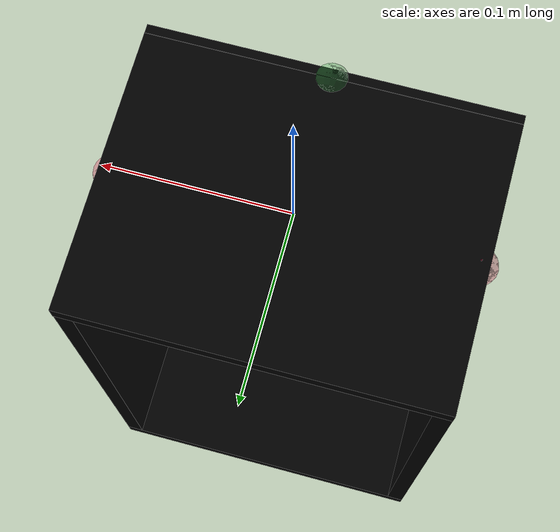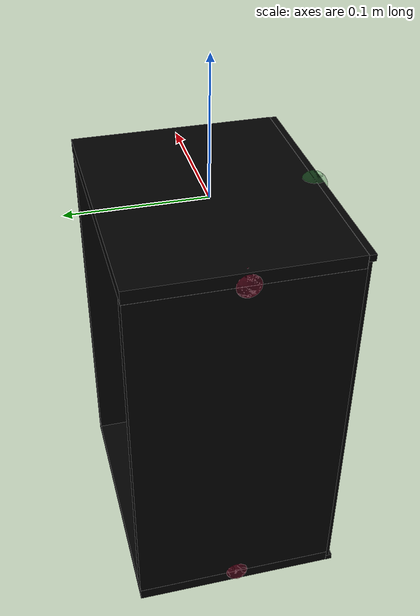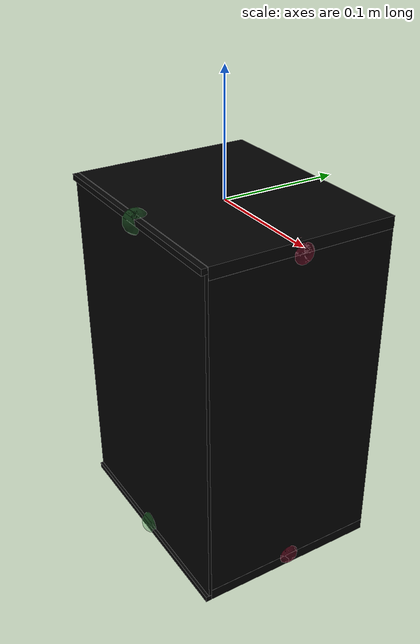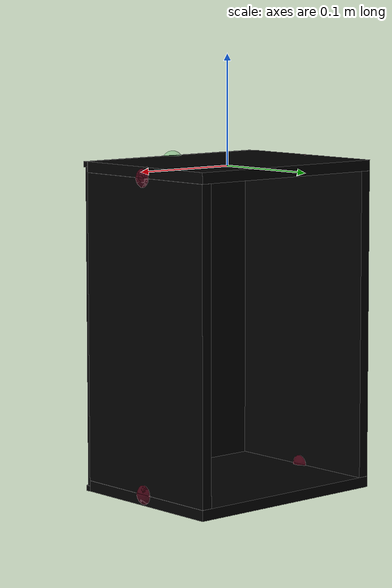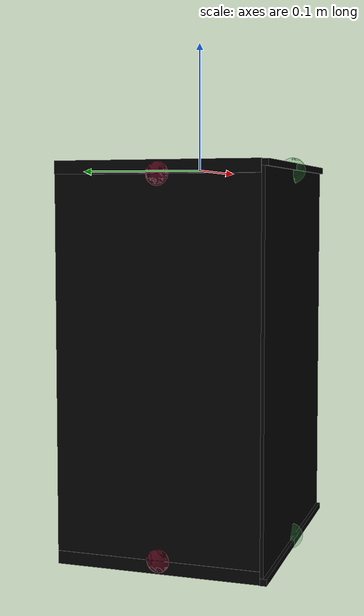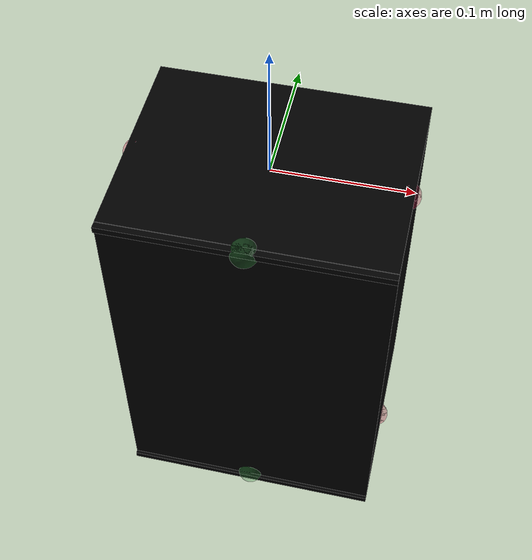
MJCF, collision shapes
<mujoco model="cabinet_akurum_0019">
    <custom>
        <numeric data="0.004059 0.31079 0.004853 -0.001617 -0.0 -3e-06 -0.999999" name="0_part0_initpos"/>
        <numeric data="0.02032 -0.15402 0.001323 0.510748 -0.510748 -0.489016 0.489016" name="4_part4_initpos"/>
        <numeric data="-0.31779 0.083549 0.00497 0.707106 -0.000865 -0.707106 -0.000865" name="3_part3_initpos"/>
        <numeric data="0.323864 0.101651 0.00497 0.707107 0.0 -0.707107 0.0" name="2_part2_initpos"/>
        <numeric data="0.000714 0.097012 0.004987 1.0 -0.000629 0.0 -0.0" name="1_part1_initpos"/>
    </custom>
    <asset>
        <mesh file="cabinet_akurum_0019/0.stl" name="part0" scale="0.01 0.01 0.01"/>
        <mesh file="cabinet_akurum_0019/4.stl" name="part4" scale="0.01 0.01 0.01"/>
        <mesh file="cabinet_akurum_0019/3.stl" name="part3" scale="0.01 0.01 0.01"/>
        <mesh file="cabinet_akurum_0019/2.stl" name="part2" scale="0.01 0.01 0.01"/>
        <mesh file="cabinet_akurum_0019/1.stl" name="part1" scale="0.01 0.01 0.01"/>
    </asset>
    <equality>
        <weld active="false" body1="0_part0" body2="2_part2" solimp="1 1 0.5" solref="0.01 0.3"/>
        <weld active="false" body1="0_part0" body2="3_part3" solimp="1 1 0.5" solref="0.01 0.3"/>
        <weld active="false" body1="1_part1" body2="2_part2" solimp="1 1 0.5" solref="0.01 0.3"/>
        <weld active="false" body1="1_part1" body2="3_part3" solimp="1 1 0.5" solref="0.01 0.3"/>
        <weld active="false" body1="0_part0" body2="4_part4" solimp="1 1 0.5" solref="0.01 0.3"/>
        <weld active="false" body1="1_part1" body2="4_part4" solimp="1 1 0.5" solref="0.01 0.3"/>
        <weld active="false" body1="1_part1" body2="3_part3" solimp="1 1 0.5" solref="0.01 0.3"/>
        <weld active="false" body1="1_part1" body2="2_part2" solimp="1 1 0.5" solref="0.01 0.3"/>
        <weld active="false" body1="0_part0" body2="3_part3" solimp="1 1 0.5" solref="0.01 0.3"/>
        <weld active="false" body1="0_part0" body2="2_part2" solimp="1 1 0.5" solref="0.01 0.3"/>
        <weld active="false" body1="1_part1" body2="4_part4" solimp="1 1 0.5" solref="0.01 0.3"/>
        <weld active="false" body1="0_part0" body2="4_part4" solimp="1 1 0.5" solref="0.01 0.3"/>
    </equality>
    <worldbody>
        <body name="0_part0" pos="0.0 -2e-09 -0.0" quat="1 0 0 0">
            <geom conaffinity="0" contype="0" density="0" mesh="part0" name="0_part0_mesh" pos="0.0 0.0 0.0"
                  rgba="0.82 0.71 0.55 1" type="mesh"/>
            <site name="0_part0_horizontal_radius_site" pos="0.0 -2e-09 -0.0" quat="1 0 0 0" rgba="0 0 0 0"
                  size="0.01"/>
            <site name="0_part0_top_site" pos="0.0 -1e-09 0.005" quat="1 0 0 0" rgba="0 0 0 0" size="0.01"/>
            <site name="0_part0_bottom_site" pos="0.0 -1e-09 -0.005" quat="1 0 0 0" rgba="0 0 0 0" size="0.01"/>
            <site name="0_part0_corner_site8" pos="-0.1 0.08 0.005" quat="1 0 0 0" rgba="0 0 0 0" size="0.01"/>
            <site name="0_part0_corner_site7" pos="0.1 0.08 0.005" quat="1 0 0 0" rgba="0 0 0 0" size="0.01"/>
            <site name="0_part0_corner_site6" pos="0.1 -0.080000003 0.005" quat="1 0 0 0" rgba="0 0 0 0" size="0.01"/>
            <site name="0_part0_corner_site5" pos="-0.1 -0.080000003 0.005" quat="1 0 0 0" rgba="0 0 0 0" size="0.01"/>
            <site name="0_part0_corner_site4" pos="-0.1 0.08 -0.005" quat="1 0 0 0" rgba="0 0 0 0" size="0.01"/>
            <site name="0_part0_corner_site3" pos="0.1 0.08 -0.005" quat="1 0 0 0" rgba="0 0 0 0" size="0.01"/>
            <site name="0_part0_corner_site2" pos="0.1 -0.080000003 -0.005" quat="1 0 0 0" rgba="0 0 0 0" size="0.01"/>
            <site name="0_part0_corner_site1" pos="-0.1 -0.080000003 -0.005" quat="1 0 0 0" rgba="0 0 0 0" size="0.01"/>
            <site name="flat-side,0,180,conn_site4" pos="-0.095 0.00125 -0.005" quat="1 0 0 0"
                  rgba="0.9019 0.0980 0.2941 0.3" size="0.01"/>
            <site name="flat-side,0,180,conn_site3" pos="0.0945 0.00125 -0.005" quat="1 0 0 0"
                  rgba="0.9019 0.0980 0.2941 0.3" size="0.01"/>
            <site name="flat-back,0,conn_site2" pos="0.0 -0.0751 -0.0006" quat="0.7071067 0.7071068 0 0"
                  rgba="0.2352 0.7058 0.2941 0.3" size="0.01"/>
            <geom density="50" name="noviz_collision_0_part0_0" pos="0.0 0.0028000000000000004 1.66e-05" quat="1 0 0 0"
                  rgba="0 0 0 0" size="0.1 0.0775 0.0049" solref="0.001 1" type="box"/>
            <geom density="50" name="noviz_collision_0_part0_1" pos="0.0 -0.0775 0.0022" quat="1 0 0 0" rgba="0 0 0 0"
                  size="0.1 0.0025 0.0025" solref="0.001 1" type="box"/>
        </body>
        <body name="4_part4" pos="0.0 -0.076250003 -0.145" quat="1 0 0 0">
            <geom conaffinity="0" contype="0" density="0" mesh="part4" name="4_part4_mesh" pos="0.0 0.0 0.0"
                  rgba="0.82 0.71 0.55 1" type="mesh"/>
            <site name="4_part4_horizontal_radius_site" pos="0.0 0.0 0.0" quat="1 0 0 0" rgba="0 0 0 0" size="0.01"/>
            <site name="4_part4_top_site" pos="0.0 0.0 0.145" quat="1 0 0 0" rgba="0 0 0 0" size="0.01"/>
            <site name="4_part4_bottom_site" pos="0.0 0.0 -0.145" quat="1 0 0 0" rgba="0 0 0 0" size="0.01"/>
            <site name="4_part4_corner_site8" pos="-0.1 0.00125 0.145" quat="1 0 0 0" rgba="0 0 0 0" size="0.01"/>
            <site name="4_part4_corner_site7" pos="0.1 0.00125 0.145" quat="1 0 0 0" rgba="0 0 0 0" size="0.01"/>
            <site name="4_part4_corner_site6" pos="0.1 -0.00125 0.145" quat="1 0 0 0" rgba="0 0 0 0" size="0.01"/>
            <site name="4_part4_corner_site5" pos="-0.1 -0.00125 0.145" quat="1 0 0 0" rgba="0 0 0 0" size="0.01"/>
            <site name="4_part4_corner_site4" pos="-0.1 0.00125 -0.145" quat="1 0 0 0" rgba="0 0 0 0" size="0.01"/>
            <site name="4_part4_corner_site3" pos="0.1 0.00125 -0.145" quat="1 0 0 0" rgba="0 0 0 0" size="0.01"/>
            <site name="4_part4_corner_site2" pos="0.1 -0.00125 -0.145" quat="1 0 0 0" rgba="0 0 0 0" size="0.01"/>
            <site name="4_part4_corner_site1" pos="-0.1 -0.00125 -0.145" quat="1 0 0 0" rgba="0 0 0 0" size="0.01"/>
            <site name="back-flat,0,conn_site2" pos="0.0 0.00115 0.1444" quat="0.7071067 0.7071068 0 0"
                  rgba="0.2352 0.7058 0.2941 0.3" size="0.01"/>
            <site name="back-flat,0,conn_site1" pos="0.0 0.00115 -0.1445" quat="0 0 0.7071068 -0.7071067"
                  rgba="0.2352 0.7058 0.2941 0.3" size="0.01"/>
            <geom density="50" name="noviz_collision_4_part4_0" pos="0.0 0.0 0.0" quat="1 0 0 0" rgba="0 0 0 0"
                  size="0.1 0.00125 0.145" solref="0.001 1" type="box"/>
        </body>
        <body name="3_part3" pos="0.094999998 0.0025 -0.145" quat="1 0 0 0">
            <geom conaffinity="0" contype="0" density="0" mesh="part3" name="3_part3_mesh" pos="0.0 0.0 0.0"
                  rgba="0.82 0.71 0.55 1" type="mesh"/>
            <site name="3_part3_horizontal_radius_site" pos="-0.0 0.0 0.0" quat="1 0 0 0" rgba="0 0 0 0" size="0.01"/>
            <site name="3_part3_top_site" pos="0.0 0.0 0.14" quat="1 0 0 0" rgba="0 0 0 0" size="0.01"/>
            <site name="3_part3_bottom_site" pos="0.0 0.0 -0.14" quat="1 0 0 0" rgba="0 0 0 0" size="0.01"/>
            <site name="3_part3_corner_site8" pos="-0.005000002 0.077500005 0.14" quat="1 0 0 0" rgba="0 0 0 0"
                  size="0.01"/>
            <site name="3_part3_corner_site7" pos="0.005000002 0.077500005 0.14" quat="1 0 0 0" rgba="0 0 0 0"
                  size="0.01"/>
            <site name="3_part3_corner_site6" pos="0.005000002 -0.077500005 0.14" quat="1 0 0 0" rgba="0 0 0 0"
                  size="0.01"/>
            <site name="3_part3_corner_site5" pos="-0.005000002 -0.077500005 0.14" quat="1 0 0 0" rgba="0 0 0 0"
                  size="0.01"/>
            <site name="3_part3_corner_site4" pos="-0.005000002 0.077500005 -0.14" quat="1 0 0 0" rgba="0 0 0 0"
                  size="0.01"/>
            <site name="3_part3_corner_site3" pos="0.005000002 0.077500005 -0.14" quat="1 0 0 0" rgba="0 0 0 0"
                  size="0.01"/>
            <site name="3_part3_corner_site2" pos="0.005000002 -0.077500005 -0.14" quat="1 0 0 0" rgba="0 0 0 0"
                  size="0.01"/>
            <site name="3_part3_corner_site1" pos="-0.005000002 -0.077500005 -0.14" quat="1 0 0 0" rgba="0 0 0 0"
                  size="0.01"/>
            <site name="side-flat,0,180,conn_site3" pos="-0.0005 -0.00125 0.14" quat="1 0 0 0"
                  rgba="0.9019 0.0980 0.2941 0.3" size="0.01"/>
            <site name="side-flat,0,180,conn_site1" pos="0.0002 -0.00125 -0.1403" quat="0 0 1 0"
                  rgba="0.9019 0.0980 0.2941 0.3" size="0.01"/>
            <geom density="50" name="noviz_collision_3_part3_0" pos="0.0 0.0 0.0" quat="1 0 0 0" rgba="0 0 0 0"
                  size="0.005 0.0775 0.14" solref="0.001 1" type="box"/>
        </body>
        <body name="2_part2" pos="-0.094999997 0.0025 -0.145" quat="1 0 0 0">
            <geom conaffinity="0" contype="0" density="0" mesh="part2" name="2_part2_mesh" pos="0.0 0.0 0.0"
                  rgba="0.82 0.71 0.55 1" type="mesh"/>
            <site name="2_part2_horizontal_radius_site" pos="-0.0 0.0 -0.0" quat="1 0 0 0" rgba="0 0 0 0" size="0.01"/>
            <site name="2_part2_top_site" pos="0.0 0.0 0.14" quat="1 0 0 0" rgba="0 0 0 0" size="0.01"/>
            <site name="2_part2_bottom_site" pos="0.0 0.0 -0.14" quat="1 0 0 0" rgba="0 0 0 0" size="0.01"/>
            <site name="2_part2_corner_site8" pos="-0.005000002999999999 0.077500005 0.14" quat="1 0 0 0" rgba="0 0 0 0"
                  size="0.01"/>
            <site name="2_part2_corner_site7" pos="0.005000002999999999 0.077500005 0.14" quat="1 0 0 0" rgba="0 0 0 0"
                  size="0.01"/>
            <site name="2_part2_corner_site6" pos="0.005000002999999999 -0.077500005 0.14" quat="1 0 0 0" rgba="0 0 0 0"
                  size="0.01"/>
            <site name="2_part2_corner_site5" pos="-0.005000002999999999 -0.077500005 0.14" quat="1 0 0 0"
                  rgba="0 0 0 0" size="0.01"/>
            <site name="2_part2_corner_site4" pos="-0.005000002999999999 0.077500005 -0.14" quat="1 0 0 0"
                  rgba="0 0 0 0" size="0.01"/>
            <site name="2_part2_corner_site3" pos="0.005000002999999999 0.077500005 -0.14" quat="1 0 0 0" rgba="0 0 0 0"
                  size="0.01"/>
            <site name="2_part2_corner_site2" pos="0.005000002999999999 -0.077500005 -0.14" quat="1 0 0 0"
                  rgba="0 0 0 0" size="0.01"/>
            <site name="2_part2_corner_site1" pos="-0.005000002999999999 -0.077500005 -0.14" quat="1 0 0 0"
                  rgba="0 0 0 0" size="0.01"/>
            <site name="side-flat,0,180,conn_site4" pos="0.0 -0.00125 0.14" quat="1 0 0 0"
                  rgba="0.9019 0.0980 0.2941 0.3" size="0.01"/>
            <site name="side-flat,0,180,conn_site2" pos="-0.0002 -0.00125 -0.1403" quat="0 0 1 0"
                  rgba="0.9019 0.0980 0.2941 0.3" size="0.01"/>
            <geom density="50" name="noviz_collision_2_part2_0" pos="0.0 0.0 0.0" quat="1 0 0 0" rgba="0 0 0 0"
                  size="0.005 0.0775 0.14" solref="0.001 1" type="box"/>
        </body>
        <body name="1_part1" pos="0.0 -2e-09 -0.29" quat="1 0 0 0">
            <geom conaffinity="0" contype="0" density="0" mesh="part1" name="1_part1_mesh" pos="0.0 0.0 0.0"
                  rgba="0.82 0.71 0.55 1" type="mesh"/>
            <site name="1_part1_horizontal_radius_site" pos="0.0 -2e-09 0.0" quat="1 0 0 0" rgba="0 0 0 0" size="0.01"/>
            <site name="1_part1_top_site" pos="0.0 -1e-09 0.005" quat="1 0 0 0" rgba="0 0 0 0" size="0.01"/>
            <site name="1_part1_bottom_site" pos="0.0 -1e-09 -0.005" quat="1 0 0 0" rgba="0 0 0 0" size="0.01"/>
            <site name="1_part1_corner_site8" pos="-0.1 0.08 0.005" quat="1 0 0 0" rgba="0 0 0 0" size="0.01"/>
            <site name="1_part1_corner_site7" pos="0.1 0.08 0.005" quat="1 0 0 0" rgba="0 0 0 0" size="0.01"/>
            <site name="1_part1_corner_site6" pos="0.1 -0.080000003 0.005" quat="1 0 0 0" rgba="0 0 0 0" size="0.01"/>
            <site name="1_part1_corner_site5" pos="-0.1 -0.080000003 0.005" quat="1 0 0 0" rgba="0 0 0 0" size="0.01"/>
            <site name="1_part1_corner_site4" pos="-0.1 0.08 -0.005" quat="1 0 0 0" rgba="0 0 0 0" size="0.01"/>
            <site name="1_part1_corner_site3" pos="0.1 0.08 -0.005" quat="1 0 0 0" rgba="0 0 0 0" size="0.01"/>
            <site name="1_part1_corner_site2" pos="0.1 -0.080000003 -0.005" quat="1 0 0 0" rgba="0 0 0 0" size="0.01"/>
            <site name="1_part1_corner_site1" pos="-0.1 -0.080000003 -0.005" quat="1 0 0 0" rgba="0 0 0 0" size="0.01"/>
            <site name="flat-side,0,180,conn_site2" pos="-0.09519999999999999 0.00125 0.0047" quat="0 0 1 0"
                  rgba="0.9019 0.0980 0.2941 0.3" size="0.01"/>
            <site name="flat-side,0,180,conn_site1" pos="0.09519999999999999 0.00125 0.0047" quat="0 0 1 0"
                  rgba="0.9019 0.0980 0.2941 0.3" size="0.01"/>
            <site name="flat-back,0,conn_site1" pos="0.0 -0.0751 0.0005" quat="0 0 0.7071068 -0.7071067"
                  rgba="0.2352 0.7058 0.2941 0.3" size="0.01"/>
            <geom density="50" name="noviz_collision_1_part1_0" pos="0.0 0.0025 -1.66e-05" quat="1 0 0 0" rgba="0 0 0 0"
                  size="0.1 0.0775 0.0049" solref="0.001 1" type="box"/>
            <geom density="50" name="noviz_collision_1_part1_1" pos="0.0 -0.0776 -0.0026000000000000003" quat="1 0 0 0"
                  rgba="0 0 0 0" size="0.1 0.0025 0.0025" solref="0.001 1" type="box"/>
        </body>
    </worldbody>
    <actuator/>
    <sensor/>
    <contact/>
    <default/>
</mujoco>
